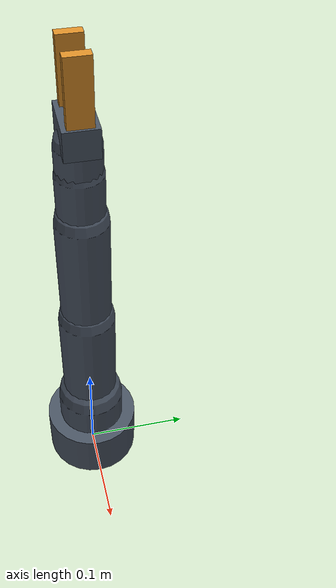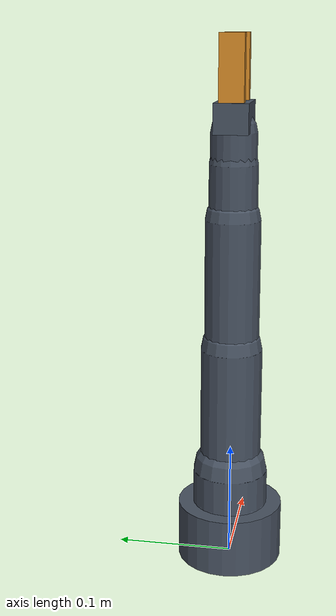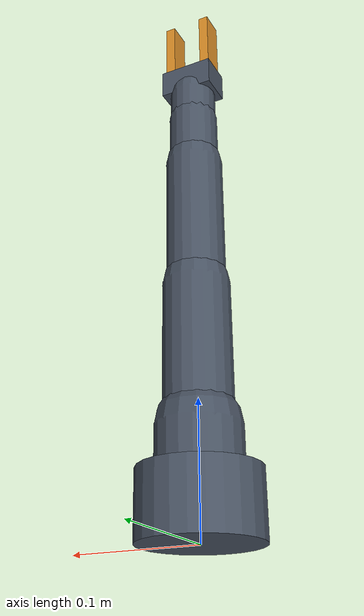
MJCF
<mujoco model="so101">
  <compiler angle="radian" autolimits="true"/>
  <option timestep="0.0016666666666666668" integrator="implicitfast"/>

  <default>
    <default class="so101">
      <joint damping="1.2" armature="0.02" frictionloss="0.02"/>
      <position kp="30" dampratio="1" forcerange="-12 12"/>
      <geom type="capsule" rgba="0.28 0.32 0.38 1" density="900"
            friction="1.0 0.01 0.001"/>
    </default>
    <default class="finger">
      <geom type="box" rgba="0.85 0.55 0.15 1" density="600"
            friction="2.0 0.05 0.001" solimp="0.95 0.99 0.001" solref="0.004 1"/>
    </default>
  </default>

  <worldbody>
    <body name="base" pos="0 0 0" childclass="so101">
      <geom name="base_geom" type="cylinder" size="0.045 0.025" pos="0 0 0.025"/>

      <body name="shoulder_pan_link" pos="0 0 0.05">
        <joint name="shoulder_pan" axis="0 0 1" range="-1.92 1.92"/>
        <geom name="shoulder_pan_geom" fromto="0 0 0 0 0 0.03" size="0.032"/>

        <body name="shoulder_lift_link" pos="0 0 0.03">
          <joint name="shoulder_lift" axis="0 1 0" range="-1.75 1.75"/>
          <geom name="upper_arm_geom" fromto="0 0 0 0 0 0.11" size="0.026"/>

          <body name="elbow_flex_link" pos="0 0 0.11">
            <joint name="elbow_flex" axis="0 1 0" range="-1.69 1.69"/>
            <geom name="forearm_geom" fromto="0 0 0 0 0 0.11" size="0.023"/>

            <body name="wrist_flex_link" pos="0 0 0.11">
              <joint name="wrist_flex" axis="0 1 0" range="-1.66 1.66"/>
              <geom name="wrist_geom" fromto="0 0 0 0 0 0.045" size="0.020"/>

              <body name="wrist_roll_link" pos="0 0 0.045">
                <joint name="wrist_roll" axis="0 0 1" range="-2.79 2.79"/>
                <geom name="wrist_roll_geom" fromto="0 0 0 0 0 0.025" size="0.019"/>

                <body name="gripper_link" pos="0 0 0.025">
                  <geom name="palm_geom" type="box" size="0.022 0.014 0.012"
                        pos="0 0 0.012"/>

                  <camera name="wrist" pos="0 -0.030 0.010"
                          xyaxes="1.000000 0.000000 -0.000000 0.000000 -0.857493 0.514496"
                          fovy="75"/>

                  <!-- Fixed jaw. -->
                  <geom name="finger_static" class="finger"
                        size="0.004 0.010 0.026" pos="-0.016 0 0.050"/>

                  <!-- Moving jaw. Closes as the joint value increases, so
                       gripper_range in the spec reads open -> closed. -->
                  <body name="finger_moving_link" pos="0.016 0 0.024">
                    <joint name="gripper" type="slide" axis="-1 0 0"
                           range="0 0.024" damping="8" armature="0.005"/>
                    <geom name="finger_moving" class="finger"
                          size="0.004 0.010 0.026" pos="0 0 0.026"/>
                  </body>
                </body>
              </body>
            </body>
          </body>
        </body>
      </body>
    </body>
  </worldbody>

  <contact>
    <exclude body1="base" body2="shoulder_pan_link"/>
  </contact>

  <actuator>
    <position class="so101" name="shoulder_pan"  joint="shoulder_pan"  ctrlrange="-1.92 1.92"/>
    <position class="so101" name="shoulder_lift" joint="shoulder_lift" ctrlrange="-1.75 1.75"/>
    <position class="so101" name="elbow_flex"    joint="elbow_flex"    ctrlrange="-1.69 1.69"/>
    <position class="so101" name="wrist_flex"    joint="wrist_flex"    ctrlrange="-1.66 1.66"/>
    <position class="so101" name="wrist_roll"    joint="wrist_roll"    ctrlrange="-2.79 2.79"/>
    <position name="gripper" joint="gripper" ctrlrange="0 0.024" kp="120" dampratio="1"
              forcerange="-25 25"/>
  </actuator>
</mujoco>
